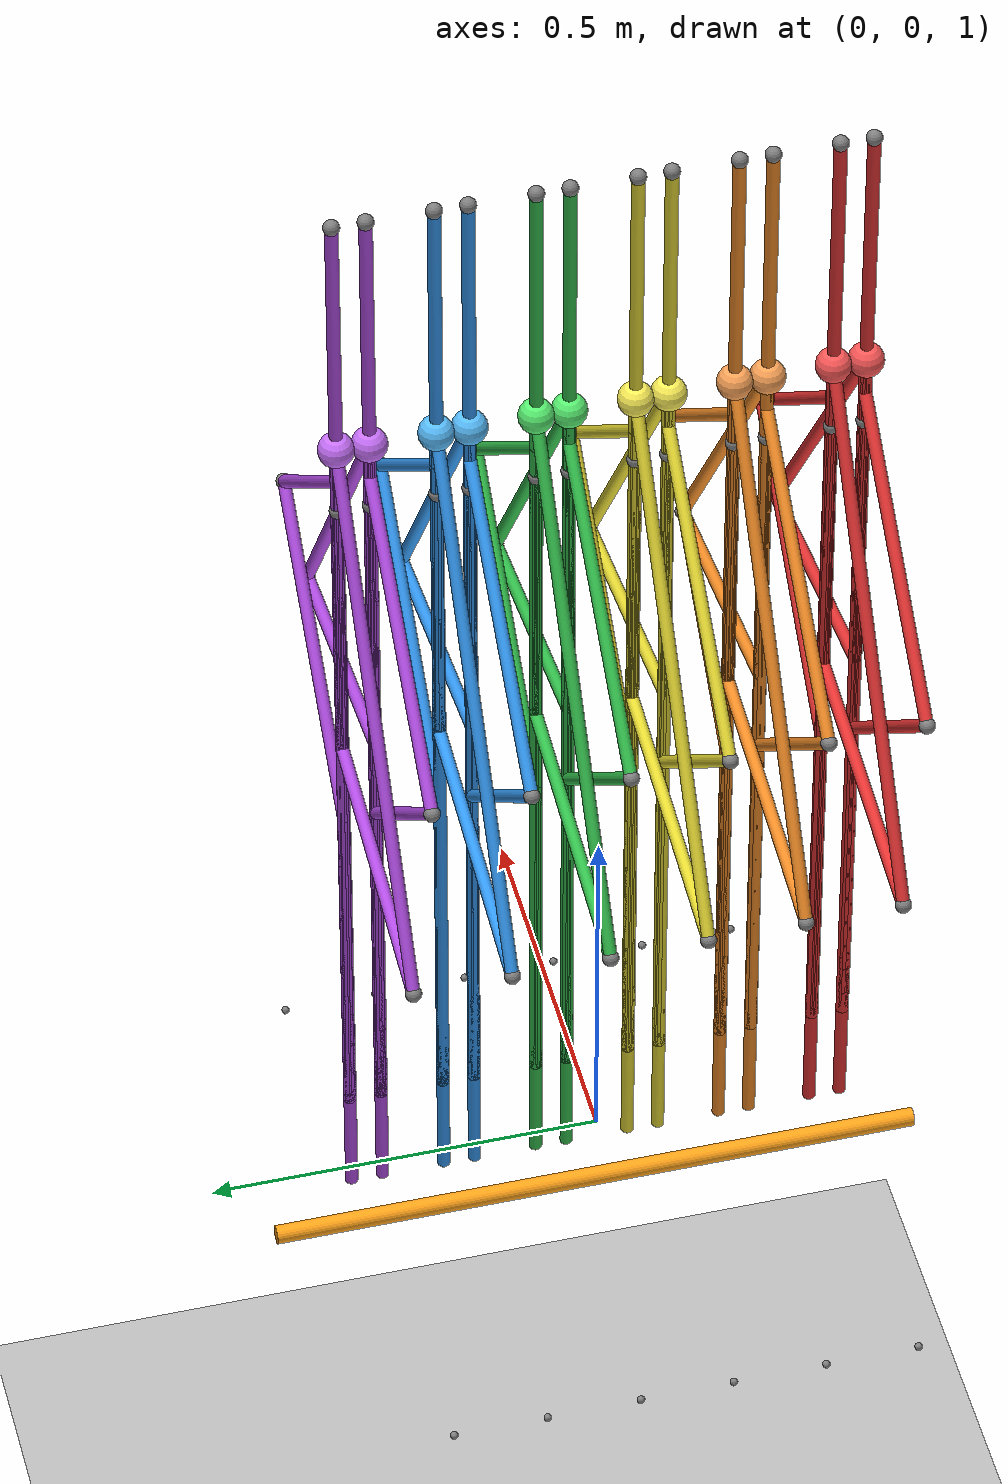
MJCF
<mujoco model="Strandbeest_12Legs">

  <compiler angle="radian" inertiafromgeom="true" autolimits="true" />

  <option gravity="0 0 -9.81" timestep="0.0005" integrator="implicitfast" iterations="800" solver="Newton" tolerance="1e-12" noslip_iterations="10" noslip_tolerance="1e-10" />

  <visual>
    <rgba haze="0.15 0.25 0.35 1" />
  </visual>

  <default>
    <joint damping="0.5" armature="0.005" />
    <geom contype="0" conaffinity="0" friction="0.8 0.1 0.1" rgba="0.5 0.5 0.5 1" density="500" />
  </default>

  <asset>
    <material name="frame" rgba="0.184 0.282 0.345 1" />
    <material name="crank" rgba="1.0 0.639 0.098 1" />
    <material name="foot_mat" rgba="0.9 0.2 0.1 1" />
    <material name="pair01" rgba="0.90 0.20 0.20 1" />
    <material name="pair02" rgba="0.95 0.55 0.15 1" />
    <material name="pair03" rgba="0.90 0.85 0.20 1" />
    <material name="pair04" rgba="0.20 0.75 0.30 1" />
    <material name="pair05" rgba="0.20 0.60 0.95 1" />
    <material name="pair06" rgba="0.70 0.30 0.90 1" />
    <material name="foot_pair01" rgba="1.00 0.35 0.35 1" />
    <material name="foot_pair02" rgba="1.00 0.65 0.35 1" />
    <material name="foot_pair03" rgba="1.00 0.95 0.35 1" />
    <material name="foot_pair04" rgba="0.35 0.95 0.45 1" />
    <material name="foot_pair05" rgba="0.35 0.75 1.00 1" />
    <material name="foot_pair06" rgba="0.80 0.45 1.00 1" />
  </asset>

  <worldbody>
    <body name="crossbar" pos="0 0 0.9">
      <geom name="crossbar_geom" type="cylinder" size="0.012 0.42" pos="0 0 0" euler="1.5708 0 0" material="crank" />

      <site name="base_p01_l_site" pos="-0.38 -0.32000 0" size="0.005" />

      <body name="crank_axle_p01_l" pos="0 -0.32000 0.078">
        <joint name="joint_crossbar_crank_p01_l" type="hinge" axis="0 1 0" />

        <body name="bar_m_p01_l" pos="0 0 0" euler="0 0 0">
          <geom name="bar_m_geom_p01_l" type="cylinder" size="0.008 0.075" pos="0 0 0.075" material="pair01" />

          <body name="bar_j_p01_l" pos="0 0 0.15">
            <joint name="joint_m_j_p01_l" type="hinge" axis="0 1 0" />
            <geom name="bar_j_geom_p01_l" type="cylinder" size="0.008 0.25" pos="0 0 0.25" material="pair01" />

            <body name="bar_k_p01_l" pos="0 0 0">
              <joint name="joint_j_k_p01_l" type="hinge" axis="0 1 0" />
              <geom name="bar_k_geom_p01_l" type="cylinder" size="0.008 0.3095" pos="0 0 0.3095" material="pair01" />

              <body name="bar_c_p01_l" pos="0 0 0.619">
                <joint name="joint_k_c_p01_l" type="hinge" axis="0 1 0" />
                <geom name="bar_c_geom_p01_l" type="cylinder" size="0.008 0.1965" pos="0 0 0.1965" material="pair01" />
                <site name="bar_c_tip_p01_l" pos="0 0 0.393" size="0.01" />
              </body>

              <body name="bars_g_h_i_p01_l" pos="0 0 0.619">
                <joint name="joint_k_i_p01_l" type="hinge" axis="0 1 0" />
                <geom name="ghi_g_p01_l" type="cylinder" size="0.008 0.245" pos="0 0 0.245" material="pair01" />
                <geom name="ghi_h_p01_l" type="cylinder" size="0.008 0.1835" pos="0.1812 0 -0.0291" euler="0 1.73 0" material="pair01" />
                <geom name="ghi_i_p01_l" type="cylinder" size="0.008 0.3285" pos="0.1811 0 0.2159" euler="0 2.5576 0" material="pair01" />
                <geom name="foot_p01_l" type="sphere" size="0.022" pos="0 0 0.49" contype="1" conaffinity="1" material="foot_pair01" />
                <site name="ghi_loopsite_p01_l" pos="0.3624 0 -0.0582" size="0.01" />
              </body>
            </body>

            <body name="bars_b_d_e_p01_l" pos="0 0 0.50">
              <joint name="joint_j_e_p01_l" type="hinge" axis="0 1 0" />
              <geom name="bde_b_p01_l" type="cylinder" size="0.008 0.279" pos="0 0 0.279" material="pair01" />
              <geom name="bde_d_p01_l" type="cylinder" size="0.008 0.2005" pos="-0.1488 0 0.4236" euler="0 -2.3056 0" material="pair01" />
              <geom name="bde_e_p01_l" type="cylinder" size="0.008 0.2075" pos="-0.1489 0 0.1446" euler="0 -0.8 0" material="pair01" />
              <site name="bde_loopsite_p01_l" pos="-0.2978 0 0.2892" size="0.01" />

              <body name="bar_f_p01_l" pos="0 0 0.558">
                <joint name="joint_e_f_p01_l" type="hinge" axis="0 1 0" />
                <geom name="bar_f_geom_p01_l" type="cylinder" size="0.008 0.197" pos="0 0 0.197" material="pair01" />
                <site name="bar_f_tip_p01_l" pos="0 0 0.394" size="0.01" />
              </body>
            </body>

          </body>
        </body>
      </body>

      <site name="base_p01_r_site" pos="0.38 -0.28 0" size="0.005" />

      <body name="crank_axle_p01_r" pos="0 -0.28 0.078">
        <joint name="joint_crossbar_crank_p01_r" type="hinge" axis="0 1 0" />

        <body name="bar_m_p01_r" pos="0 0 0" euler="0 0 0">
          <geom name="bar_m_geom_p01_r" type="cylinder" size="0.008 0.075" pos="0 0 0.075" material="pair01" />

          <body name="bar_j_p01_r" pos="0 0 0.15">
            <joint name="joint_m_j_p01_r" type="hinge" axis="0 1 0" />
            <geom name="bar_j_geom_p01_r" type="cylinder" size="0.008 0.25" pos="0 0 0.25" material="pair01" />

            <body name="bar_k_p01_r" pos="0 0 0">
              <joint name="joint_j_k_p01_r" type="hinge" axis="0 1 0" />
              <geom name="bar_k_geom_p01_r" type="cylinder" size="0.008 0.3095" pos="0 0 0.3095" material="pair01" />

              <body name="bar_c_p01_r" pos="0 0 0.619">
                <joint name="joint_k_c_p01_r" type="hinge" axis="0 1 0" />
                <geom name="bar_c_geom_p01_r" type="cylinder" size="0.008 0.1965" pos="0 0 0.1965" material="pair01" />
                <site name="bar_c_tip_p01_r" pos="0 0 0.393" size="0.01" />
              </body>

              <body name="bars_g_h_i_p01_r" pos="0 0 0.619">
                <joint name="joint_k_i_p01_r" type="hinge" axis="0 1 0" />
                <geom name="ghi_g_p01_r" type="cylinder" size="0.008 0.245" pos="0 0 0.245" material="pair01" />
                <geom name="ghi_h_p01_r" type="cylinder" size="0.008 0.1835" pos="-0.1812 0 -0.0291" euler="0 -1.73 0" material="pair01" />
                <geom name="ghi_i_p01_r" type="cylinder" size="0.008 0.3285" pos="-0.1811 0 0.2159" euler="0 -2.5576 0" material="pair01" />
                <geom name="foot_p01_r" type="sphere" size="0.022" pos="0 0 0.49" contype="1" conaffinity="1" material="foot_pair01" />
                <site name="ghi_loopsite_p01_r" pos="-0.3624 0 -0.0582" size="0.01" />
              </body>
            </body>

            <body name="bars_b_d_e_p01_r" pos="0 0 0.5">
              <joint name="joint_j_e_p01_r" type="hinge" axis="0 1 0" />
              <geom name="bde_b_p01_r" type="cylinder" size="0.008 0.279" pos="0 0 0.279" material="pair01" />
              <geom name="bde_d_p01_r" type="cylinder" size="0.008 0.2005" pos="0.1488 0 0.4236" euler="0 2.3056 0" material="pair01" />
              <geom name="bde_e_p01_r" type="cylinder" size="0.008 0.2075" pos="0.1489 0 0.1446" euler="0 0.8 0" material="pair01" />
              <site name="bde_loopsite_p01_r" pos="0.2978 0 0.2892" size="0.01" />

              <body name="bar_f_p01_r" pos="0 0 0.558">
                <joint name="joint_e_f_p01_r" type="hinge" axis="0 1 0" />
                <geom name="bar_f_geom_p01_r" type="cylinder" size="0.008 0.197" pos="0 0 0.197" material="pair01" />
                <site name="bar_f_tip_p01_r" pos="0 0 0.394" size="0.01" />
              </body>
            </body>

          </body>
        </body>
      </body>

      <site name="base_p02_l_site" pos="-0.38 -0.20000 0" size="0.005" />

      <body name="crank_axle_p02_l" pos="0 -0.20000 0.078">
        <joint name="joint_crossbar_crank_p02_l" type="hinge" axis="0 1 0" />

        <body name="bar_m_p02_l" pos="0 0 0" euler="0 0 0">
          <geom name="bar_m_geom_p02_l" type="cylinder" size="0.008 0.075" pos="0 0 0.075" material="pair02" />

          <body name="bar_j_p02_l" pos="0 0 0.15">
            <joint name="joint_m_j_p02_l" type="hinge" axis="0 1 0" />
            <geom name="bar_j_geom_p02_l" type="cylinder" size="0.008 0.25" pos="0 0 0.25" material="pair02" />

            <body name="bar_k_p02_l" pos="0 0 0">
              <joint name="joint_j_k_p02_l" type="hinge" axis="0 1 0" />
              <geom name="bar_k_geom_p02_l" type="cylinder" size="0.008 0.3095" pos="0 0 0.3095" material="pair02" />

              <body name="bar_c_p02_l" pos="0 0 0.619">
                <joint name="joint_k_c_p02_l" type="hinge" axis="0 1 0" />
                <geom name="bar_c_geom_p02_l" type="cylinder" size="0.008 0.1965" pos="0 0 0.1965" material="pair02" />
                <site name="bar_c_tip_p02_l" pos="0 0 0.393" size="0.01" />
              </body>

              <body name="bars_g_h_i_p02_l" pos="0 0 0.619">
                <joint name="joint_k_i_p02_l" type="hinge" axis="0 1 0" />
                <geom name="ghi_g_p02_l" type="cylinder" size="0.008 0.245" pos="0 0 0.245" material="pair02" />
                <geom name="ghi_h_p02_l" type="cylinder" size="0.008 0.1835" pos="0.1812 0 -0.0291" euler="0 1.73 0" material="pair02" />
                <geom name="ghi_i_p02_l" type="cylinder" size="0.008 0.3285" pos="0.1811 0 0.2159" euler="0 2.5576 0" material="pair02" />
                <geom name="foot_p02_l" type="sphere" size="0.022" pos="0 0 0.49" contype="1" conaffinity="1" material="foot_pair02" />
                <site name="ghi_loopsite_p02_l" pos="0.3624 0 -0.0582" size="0.01" />
              </body>
            </body>

            <body name="bars_b_d_e_p02_l" pos="0 0 0.50">
              <joint name="joint_j_e_p02_l" type="hinge" axis="0 1 0" />
              <geom name="bde_b_p02_l" type="cylinder" size="0.008 0.279" pos="0 0 0.279" material="pair02" />
              <geom name="bde_d_p02_l" type="cylinder" size="0.008 0.2005" pos="-0.1488 0 0.4236" euler="0 -2.3056 0" material="pair02" />
              <geom name="bde_e_p02_l" type="cylinder" size="0.008 0.2075" pos="-0.1489 0 0.1446" euler="0 -0.8 0" material="pair02" />
              <site name="bde_loopsite_p02_l" pos="-0.2978 0 0.2892" size="0.01" />

              <body name="bar_f_p02_l" pos="0 0 0.558">
                <joint name="joint_e_f_p02_l" type="hinge" axis="0 1 0" />
                <geom name="bar_f_geom_p02_l" type="cylinder" size="0.008 0.197" pos="0 0 0.197" material="pair02" />
                <site name="bar_f_tip_p02_l" pos="0 0 0.394" size="0.01" />
              </body>
            </body>

          </body>
        </body>
      </body>

      <site name="base_p02_r_site" pos="0.38 -0.16 0" size="0.005" />

      <body name="crank_axle_p02_r" pos="0 -0.16 0.078">
        <joint name="joint_crossbar_crank_p02_r" type="hinge" axis="0 1 0" />

        <body name="bar_m_p02_r" pos="0 0 0" euler="0 0 0">
          <geom name="bar_m_geom_p02_r" type="cylinder" size="0.008 0.075" pos="0 0 0.075" material="pair02" />

          <body name="bar_j_p02_r" pos="0 0 0.15">
            <joint name="joint_m_j_p02_r" type="hinge" axis="0 1 0" />
            <geom name="bar_j_geom_p02_r" type="cylinder" size="0.008 0.25" pos="0 0 0.25" material="pair02" />

            <body name="bar_k_p02_r" pos="0 0 0">
              <joint name="joint_j_k_p02_r" type="hinge" axis="0 1 0" />
              <geom name="bar_k_geom_p02_r" type="cylinder" size="0.008 0.3095" pos="0 0 0.3095" material="pair02" />

              <body name="bar_c_p02_r" pos="0 0 0.619">
                <joint name="joint_k_c_p02_r" type="hinge" axis="0 1 0" />
                <geom name="bar_c_geom_p02_r" type="cylinder" size="0.008 0.1965" pos="0 0 0.1965" material="pair02" />
                <site name="bar_c_tip_p02_r" pos="0 0 0.393" size="0.01" />
              </body>

              <body name="bars_g_h_i_p02_r" pos="0 0 0.619">
                <joint name="joint_k_i_p02_r" type="hinge" axis="0 1 0" />
                <geom name="ghi_g_p02_r" type="cylinder" size="0.008 0.245" pos="0 0 0.245" material="pair02" />
                <geom name="ghi_h_p02_r" type="cylinder" size="0.008 0.1835" pos="-0.1812 0 -0.0291" euler="0 -1.73 0" material="pair02" />
                <geom name="ghi_i_p02_r" type="cylinder" size="0.008 0.3285" pos="-0.1811 0 0.2159" euler="0 -2.5576 0" material="pair02" />
                <geom name="foot_p02_r" type="sphere" size="0.022" pos="0 0 0.49" contype="1" conaffinity="1" material="foot_pair02" />
                <site name="ghi_loopsite_p02_r" pos="-0.3624 0 -0.0582" size="0.01" />
              </body>
            </body>

            <body name="bars_b_d_e_p02_r" pos="0 0 0.5">
              <joint name="joint_j_e_p02_r" type="hinge" axis="0 1 0" />
              <geom name="bde_b_p02_r" type="cylinder" size="0.008 0.279" pos="0 0 0.279" material="pair02" />
              <geom name="bde_d_p02_r" type="cylinder" size="0.008 0.2005" pos="0.1488 0 0.4236" euler="0 2.3056 0" material="pair02" />
              <geom name="bde_e_p02_r" type="cylinder" size="0.008 0.2075" pos="0.1489 0 0.1446" euler="0 0.8 0" material="pair02" />
              <site name="bde_loopsite_p02_r" pos="0.2978 0 0.2892" size="0.01" />

              <body name="bar_f_p02_r" pos="0 0 0.558">
                <joint name="joint_e_f_p02_r" type="hinge" axis="0 1 0" />
                <geom name="bar_f_geom_p02_r" type="cylinder" size="0.008 0.197" pos="0 0 0.197" material="pair02" />
                <site name="bar_f_tip_p02_r" pos="0 0 0.394" size="0.01" />
              </body>
            </body>

          </body>
        </body>
      </body>

      <site name="base_p03_l_site" pos="-0.38 -0.08000 0" size="0.005" />

      <body name="crank_axle_p03_l" pos="0 -0.08000 0.078">
        <joint name="joint_crossbar_crank_p03_l" type="hinge" axis="0 1 0" />

        <body name="bar_m_p03_l" pos="0 0 0" euler="0 0 0">
          <geom name="bar_m_geom_p03_l" type="cylinder" size="0.008 0.075" pos="0 0 0.075" material="pair03" />

          <body name="bar_j_p03_l" pos="0 0 0.15">
            <joint name="joint_m_j_p03_l" type="hinge" axis="0 1 0" />
            <geom name="bar_j_geom_p03_l" type="cylinder" size="0.008 0.25" pos="0 0 0.25" material="pair03" />

            <body name="bar_k_p03_l" pos="0 0 0">
              <joint name="joint_j_k_p03_l" type="hinge" axis="0 1 0" />
              <geom name="bar_k_geom_p03_l" type="cylinder" size="0.008 0.3095" pos="0 0 0.3095" material="pair03" />

              <body name="bar_c_p03_l" pos="0 0 0.619">
                <joint name="joint_k_c_p03_l" type="hinge" axis="0 1 0" />
                <geom name="bar_c_geom_p03_l" type="cylinder" size="0.008 0.1965" pos="0 0 0.1965" material="pair03" />
                <site name="bar_c_tip_p03_l" pos="0 0 0.393" size="0.01" />
              </body>

              <body name="bars_g_h_i_p03_l" pos="0 0 0.619">
                <joint name="joint_k_i_p03_l" type="hinge" axis="0 1 0" />
                <geom name="ghi_g_p03_l" type="cylinder" size="0.008 0.245" pos="0 0 0.245" material="pair03" />
                <geom name="ghi_h_p03_l" type="cylinder" size="0.008 0.1835" pos="0.1812 0 -0.0291" euler="0 1.73 0" material="pair03" />
                <geom name="ghi_i_p03_l" type="cylinder" size="0.008 0.3285" pos="0.1811 0 0.2159" euler="0 2.5576 0" material="pair03" />
                <geom name="foot_p03_l" type="sphere" size="0.022" pos="0 0 0.49" contype="1" conaffinity="1" material="foot_pair03" />
                <site name="ghi_loopsite_p03_l" pos="0.3624 0 -0.0582" size="0.01" />
              </body>
            </body>

            <body name="bars_b_d_e_p03_l" pos="0 0 0.50">
              <joint name="joint_j_e_p03_l" type="hinge" axis="0 1 0" />
              <geom name="bde_b_p03_l" type="cylinder" size="0.008 0.279" pos="0 0 0.279" material="pair03" />
              <geom name="bde_d_p03_l" type="cylinder" size="0.008 0.2005" pos="-0.1488 0 0.4236" euler="0 -2.3056 0" material="pair03" />
              <geom name="bde_e_p03_l" type="cylinder" size="0.008 0.2075" pos="-0.1489 0 0.1446" euler="0 -0.8 0" material="pair03" />
              <site name="bde_loopsite_p03_l" pos="-0.2978 0 0.2892" size="0.01" />

              <body name="bar_f_p03_l" pos="0 0 0.558">
                <joint name="joint_e_f_p03_l" type="hinge" axis="0 1 0" />
                <geom name="bar_f_geom_p03_l" type="cylinder" size="0.008 0.197" pos="0 0 0.197" material="pair03" />
                <site name="bar_f_tip_p03_l" pos="0 0 0.394" size="0.01" />
              </body>
            </body>

          </body>
        </body>
      </body>

      <site name="base_p03_r_site" pos="0.38 -0.04 0" size="0.005" />

      <body name="crank_axle_p03_r" pos="0 -0.04 0.078">
        <joint name="joint_crossbar_crank_p03_r" type="hinge" axis="0 1 0" />

        <body name="bar_m_p03_r" pos="0 0 0" euler="0 0 0">
          <geom name="bar_m_geom_p03_r" type="cylinder" size="0.008 0.075" pos="0 0 0.075" material="pair03" />

          <body name="bar_j_p03_r" pos="0 0 0.15">
            <joint name="joint_m_j_p03_r" type="hinge" axis="0 1 0" />
            <geom name="bar_j_geom_p03_r" type="cylinder" size="0.008 0.25" pos="0 0 0.25" material="pair03" />

            <body name="bar_k_p03_r" pos="0 0 0">
              <joint name="joint_j_k_p03_r" type="hinge" axis="0 1 0" />
              <geom name="bar_k_geom_p03_r" type="cylinder" size="0.008 0.3095" pos="0 0 0.3095" material="pair03" />

              <body name="bar_c_p03_r" pos="0 0 0.619">
                <joint name="joint_k_c_p03_r" type="hinge" axis="0 1 0" />
                <geom name="bar_c_geom_p03_r" type="cylinder" size="0.008 0.1965" pos="0 0 0.1965" material="pair03" />
                <site name="bar_c_tip_p03_r" pos="0 0 0.393" size="0.01" />
              </body>

              <body name="bars_g_h_i_p03_r" pos="0 0 0.619">
                <joint name="joint_k_i_p03_r" type="hinge" axis="0 1 0" />
                <geom name="ghi_g_p03_r" type="cylinder" size="0.008 0.245" pos="0 0 0.245" material="pair03" />
                <geom name="ghi_h_p03_r" type="cylinder" size="0.008 0.1835" pos="-0.1812 0 -0.0291" euler="0 -1.73 0" material="pair03" />
                <geom name="ghi_i_p03_r" type="cylinder" size="0.008 0.3285" pos="-0.1811 0 0.2159" euler="0 -2.5576 0" material="pair03" />
                <geom name="foot_p03_r" type="sphere" size="0.022" pos="0 0 0.49" contype="1" conaffinity="1" material="foot_pair03" />
                <site name="ghi_loopsite_p03_r" pos="-0.3624 0 -0.0582" size="0.01" />
              </body>
            </body>

            <body name="bars_b_d_e_p03_r" pos="0 0 0.5">
              <joint name="joint_j_e_p03_r" type="hinge" axis="0 1 0" />
              <geom name="bde_b_p03_r" type="cylinder" size="0.008 0.279" pos="0 0 0.279" material="pair03" />
              <geom name="bde_d_p03_r" type="cylinder" size="0.008 0.2005" pos="0.1488 0 0.4236" euler="0 2.3056 0" material="pair03" />
              <geom name="bde_e_p03_r" type="cylinder" size="0.008 0.2075" pos="0.1489 0 0.1446" euler="0 0.8 0" material="pair03" />
              <site name="bde_loopsite_p03_r" pos="0.2978 0 0.2892" size="0.01" />

              <body name="bar_f_p03_r" pos="0 0 0.558">
                <joint name="joint_e_f_p03_r" type="hinge" axis="0 1 0" />
                <geom name="bar_f_geom_p03_r" type="cylinder" size="0.008 0.197" pos="0 0 0.197" material="pair03" />
                <site name="bar_f_tip_p03_r" pos="0 0 0.394" size="0.01" />
              </body>
            </body>

          </body>
        </body>
      </body>

      <site name="base_p04_l_site" pos="-0.38 0.04000 0" size="0.005" />

      <body name="crank_axle_p04_l" pos="0 0.04000 0.078">
        <joint name="joint_crossbar_crank_p04_l" type="hinge" axis="0 1 0" />

        <body name="bar_m_p04_l" pos="0 0 0" euler="0 0 0">
          <geom name="bar_m_geom_p04_l" type="cylinder" size="0.008 0.075" pos="0 0 0.075" material="pair04" />

          <body name="bar_j_p04_l" pos="0 0 0.15">
            <joint name="joint_m_j_p04_l" type="hinge" axis="0 1 0" />
            <geom name="bar_j_geom_p04_l" type="cylinder" size="0.008 0.25" pos="0 0 0.25" material="pair04" />

            <body name="bar_k_p04_l" pos="0 0 0">
              <joint name="joint_j_k_p04_l" type="hinge" axis="0 1 0" />
              <geom name="bar_k_geom_p04_l" type="cylinder" size="0.008 0.3095" pos="0 0 0.3095" material="pair04" />

              <body name="bar_c_p04_l" pos="0 0 0.619">
                <joint name="joint_k_c_p04_l" type="hinge" axis="0 1 0" />
                <geom name="bar_c_geom_p04_l" type="cylinder" size="0.008 0.1965" pos="0 0 0.1965" material="pair04" />
                <site name="bar_c_tip_p04_l" pos="0 0 0.393" size="0.01" />
              </body>

              <body name="bars_g_h_i_p04_l" pos="0 0 0.619">
                <joint name="joint_k_i_p04_l" type="hinge" axis="0 1 0" />
                <geom name="ghi_g_p04_l" type="cylinder" size="0.008 0.245" pos="0 0 0.245" material="pair04" />
                <geom name="ghi_h_p04_l" type="cylinder" size="0.008 0.1835" pos="0.1812 0 -0.0291" euler="0 1.73 0" material="pair04" />
                <geom name="ghi_i_p04_l" type="cylinder" size="0.008 0.3285" pos="0.1811 0 0.2159" euler="0 2.5576 0" material="pair04" />
                <geom name="foot_p04_l" type="sphere" size="0.022" pos="0 0 0.49" contype="1" conaffinity="1" material="foot_pair04" />
                <site name="ghi_loopsite_p04_l" pos="0.3624 0 -0.0582" size="0.01" />
              </body>
            </body>

            <body name="bars_b_d_e_p04_l" pos="0 0 0.50">
              <joint name="joint_j_e_p04_l" type="hinge" axis="0 1 0" />
              <geom name="bde_b_p04_l" type="cylinder" size="0.008 0.279" pos="0 0 0.279" material="pair04" />
              <geom name="bde_d_p04_l" type="cylinder" size="0.008 0.2005" pos="-0.1488 0 0.4236" euler="0 -2.3056 0" material="pair04" />
              <geom name="bde_e_p04_l" type="cylinder" size="0.008 0.2075" pos="-0.1489 0 0.1446" euler="0 -0.8 0" material="pair04" />
              <site name="bde_loopsite_p04_l" pos="-0.2978 0 0.2892" size="0.01" />

              <body name="bar_f_p04_l" pos="0 0 0.558">
                <joint name="joint_e_f_p04_l" type="hinge" axis="0 1 0" />
                <geom name="bar_f_geom_p04_l" type="cylinder" size="0.008 0.197" pos="0 0 0.197" material="pair04" />
                <site name="bar_f_tip_p04_l" pos="0 0 0.394" size="0.01" />
              </body>
            </body>

          </body>
        </body>
      </body>

      <site name="base_p04_r_site" pos="0.38 0.08 0" size="0.005" />

      <body name="crank_axle_p04_r" pos="0 0.08 0.078">
        <joint name="joint_crossbar_crank_p04_r" type="hinge" axis="0 1 0" />

        <body name="bar_m_p04_r" pos="0 0 0" euler="0 0 0">
          <geom name="bar_m_geom_p04_r" type="cylinder" size="0.008 0.075" pos="0 0 0.075" material="pair04" />

          <body name="bar_j_p04_r" pos="0 0 0.15">
            <joint name="joint_m_j_p04_r" type="hinge" axis="0 1 0" />
            <geom name="bar_j_geom_p04_r" type="cylinder" size="0.008 0.25" pos="0 0 0.25" material="pair04" />

            <body name="bar_k_p04_r" pos="0 0 0">
              <joint name="joint_j_k_p04_r" type="hinge" axis="0 1 0" />
              <geom name="bar_k_geom_p04_r" type="cylinder" size="0.008 0.3095" pos="0 0 0.3095" material="pair04" />

              <body name="bar_c_p04_r" pos="0 0 0.619">
                <joint name="joint_k_c_p04_r" type="hinge" axis="0 1 0" />
                <geom name="bar_c_geom_p04_r" type="cylinder" size="0.008 0.1965" pos="0 0 0.1965" material="pair04" />
                <site name="bar_c_tip_p04_r" pos="0 0 0.393" size="0.01" />
              </body>

              <body name="bars_g_h_i_p04_r" pos="0 0 0.619">
                <joint name="joint_k_i_p04_r" type="hinge" axis="0 1 0" />
                <geom name="ghi_g_p04_r" type="cylinder" size="0.008 0.245" pos="0 0 0.245" material="pair04" />
                <geom name="ghi_h_p04_r" type="cylinder" size="0.008 0.1835" pos="-0.1812 0 -0.0291" euler="0 -1.73 0" material="pair04" />
                <geom name="ghi_i_p04_r" type="cylinder" size="0.008 0.3285" pos="-0.1811 0 0.2159" euler="0 -2.5576 0" material="pair04" />
                <geom name="foot_p04_r" type="sphere" size="0.022" pos="0 0 0.49" contype="1" conaffinity="1" material="foot_pair04" />
                <site name="ghi_loopsite_p04_r" pos="-0.3624 0 -0.0582" size="0.01" />
              </body>
            </body>

            <body name="bars_b_d_e_p04_r" pos="0 0 0.5">
              <joint name="joint_j_e_p04_r" type="hinge" axis="0 1 0" />
              <geom name="bde_b_p04_r" type="cylinder" size="0.008 0.279" pos="0 0 0.279" material="pair04" />
              <geom name="bde_d_p04_r" type="cylinder" size="0.008 0.2005" pos="0.1488 0 0.4236" euler="0 2.3056 0" material="pair04" />
              <geom name="bde_e_p04_r" type="cylinder" size="0.008 0.2075" pos="0.1489 0 0.1446" euler="0 0.8 0" material="pair04" />
              <site name="bde_loopsite_p04_r" pos="0.2978 0 0.2892" size="0.01" />

              <body name="bar_f_p04_r" pos="0 0 0.558">
                <joint name="joint_e_f_p04_r" type="hinge" axis="0 1 0" />
                <geom name="bar_f_geom_p04_r" type="cylinder" size="0.008 0.197" pos="0 0 0.197" material="pair04" />
                <site name="bar_f_tip_p04_r" pos="0 0 0.394" size="0.01" />
              </body>
            </body>

          </body>
        </body>
      </body>

      <site name="base_p05_l_site" pos="-0.38 0.16000 0" size="0.005" />

      <body name="crank_axle_p05_l" pos="0 0.16000 0.078">
        <joint name="joint_crossbar_crank_p05_l" type="hinge" axis="0 1 0" />

        <body name="bar_m_p05_l" pos="0 0 0" euler="0 0 0">
          <geom name="bar_m_geom_p05_l" type="cylinder" size="0.008 0.075" pos="0 0 0.075" material="pair05" />

          <body name="bar_j_p05_l" pos="0 0 0.15">
            <joint name="joint_m_j_p05_l" type="hinge" axis="0 1 0" />
            <geom name="bar_j_geom_p05_l" type="cylinder" size="0.008 0.25" pos="0 0 0.25" material="pair05" />

            <body name="bar_k_p05_l" pos="0 0 0">
              <joint name="joint_j_k_p05_l" type="hinge" axis="0 1 0" />
              <geom name="bar_k_geom_p05_l" type="cylinder" size="0.008 0.3095" pos="0 0 0.3095" material="pair05" />

              <body name="bar_c_p05_l" pos="0 0 0.619">
                <joint name="joint_k_c_p05_l" type="hinge" axis="0 1 0" />
                <geom name="bar_c_geom_p05_l" type="cylinder" size="0.008 0.1965" pos="0 0 0.1965" material="pair05" />
                <site name="bar_c_tip_p05_l" pos="0 0 0.393" size="0.01" />
              </body>

              <body name="bars_g_h_i_p05_l" pos="0 0 0.619">
                <joint name="joint_k_i_p05_l" type="hinge" axis="0 1 0" />
                <geom name="ghi_g_p05_l" type="cylinder" size="0.008 0.245" pos="0 0 0.245" material="pair05" />
                <geom name="ghi_h_p05_l" type="cylinder" size="0.008 0.1835" pos="0.1812 0 -0.0291" euler="0 1.73 0" material="pair05" />
                <geom name="ghi_i_p05_l" type="cylinder" size="0.008 0.3285" pos="0.1811 0 0.2159" euler="0 2.5576 0" material="pair05" />
                <geom name="foot_p05_l" type="sphere" size="0.022" pos="0 0 0.49" contype="1" conaffinity="1" material="foot_pair05" />
                <site name="ghi_loopsite_p05_l" pos="0.3624 0 -0.0582" size="0.01" />
              </body>
            </body>

            <body name="bars_b_d_e_p05_l" pos="0 0 0.50">
              <joint name="joint_j_e_p05_l" type="hinge" axis="0 1 0" />
              <geom name="bde_b_p05_l" type="cylinder" size="0.008 0.279" pos="0 0 0.279" material="pair05" />
              <geom name="bde_d_p05_l" type="cylinder" size="0.008 0.2005" pos="-0.1488 0 0.4236" euler="0 -2.3056 0" material="pair05" />
              <geom name="bde_e_p05_l" type="cylinder" size="0.008 0.2075" pos="-0.1489 0 0.1446" euler="0 -0.8 0" material="pair05" />
              <site name="bde_loopsite_p05_l" pos="-0.2978 0 0.2892" size="0.01" />

              <body name="bar_f_p05_l" pos="0 0 0.558">
                <joint name="joint_e_f_p05_l" type="hinge" axis="0 1 0" />
                <geom name="bar_f_geom_p05_l" type="cylinder" size="0.008 0.197" pos="0 0 0.197" material="pair05" />
                <site name="bar_f_tip_p05_l" pos="0 0 0.394" size="0.01" />
              </body>
            </body>

          </body>
        </body>
      </body>

      <site name="base_p05_r_site" pos="0.38 0.2 0" size="0.005" />

      <body name="crank_axle_p05_r" pos="0 0.2 0.078">
        <joint name="joint_crossbar_crank_p05_r" type="hinge" axis="0 1 0" />

        <body name="bar_m_p05_r" pos="0 0 0" euler="0 0 0">
          <geom name="bar_m_geom_p05_r" type="cylinder" size="0.008 0.075" pos="0 0 0.075" material="pair05" />

          <body name="bar_j_p05_r" pos="0 0 0.15">
            <joint name="joint_m_j_p05_r" type="hinge" axis="0 1 0" />
            <geom name="bar_j_geom_p05_r" type="cylinder" size="0.008 0.25" pos="0 0 0.25" material="pair05" />

            <body name="bar_k_p05_r" pos="0 0 0">
              <joint name="joint_j_k_p05_r" type="hinge" axis="0 1 0" />
              <geom name="bar_k_geom_p05_r" type="cylinder" size="0.008 0.3095" pos="0 0 0.3095" material="pair05" />

              <body name="bar_c_p05_r" pos="0 0 0.619">
                <joint name="joint_k_c_p05_r" type="hinge" axis="0 1 0" />
                <geom name="bar_c_geom_p05_r" type="cylinder" size="0.008 0.1965" pos="0 0 0.1965" material="pair05" />
                <site name="bar_c_tip_p05_r" pos="0 0 0.393" size="0.01" />
              </body>

              <body name="bars_g_h_i_p05_r" pos="0 0 0.619">
                <joint name="joint_k_i_p05_r" type="hinge" axis="0 1 0" />
                <geom name="ghi_g_p05_r" type="cylinder" size="0.008 0.245" pos="0 0 0.245" material="pair05" />
                <geom name="ghi_h_p05_r" type="cylinder" size="0.008 0.1835" pos="-0.1812 0 -0.0291" euler="0 -1.73 0" material="pair05" />
                <geom name="ghi_i_p05_r" type="cylinder" size="0.008 0.3285" pos="-0.1811 0 0.2159" euler="0 -2.5576 0" material="pair05" />
                <geom name="foot_p05_r" type="sphere" size="0.022" pos="0 0 0.49" contype="1" conaffinity="1" material="foot_pair05" />
                <site name="ghi_loopsite_p05_r" pos="-0.3624 0 -0.0582" size="0.01" />
              </body>
            </body>

            <body name="bars_b_d_e_p05_r" pos="0 0 0.5">
              <joint name="joint_j_e_p05_r" type="hinge" axis="0 1 0" />
              <geom name="bde_b_p05_r" type="cylinder" size="0.008 0.279" pos="0 0 0.279" material="pair05" />
              <geom name="bde_d_p05_r" type="cylinder" size="0.008 0.2005" pos="0.1488 0 0.4236" euler="0 2.3056 0" material="pair05" />
              <geom name="bde_e_p05_r" type="cylinder" size="0.008 0.2075" pos="0.1489 0 0.1446" euler="0 0.8 0" material="pair05" />
              <site name="bde_loopsite_p05_r" pos="0.2978 0 0.2892" size="0.01" />

              <body name="bar_f_p05_r" pos="0 0 0.558">
                <joint name="joint_e_f_p05_r" type="hinge" axis="0 1 0" />
                <geom name="bar_f_geom_p05_r" type="cylinder" size="0.008 0.197" pos="0 0 0.197" material="pair05" />
                <site name="bar_f_tip_p05_r" pos="0 0 0.394" size="0.01" />
              </body>
            </body>

          </body>
        </body>
      </body>

      <site name="base_p06_l_site" pos="-0.38 0.28000 0" size="0.005" />

      <body name="crank_axle_p06_l" pos="0 0.28000 0.078">
        <joint name="joint_crossbar_crank_p06_l" type="hinge" axis="0 1 0" />

        <body name="bar_m_p06_l" pos="0 0 0" euler="0 0 0">
          <geom name="bar_m_geom_p06_l" type="cylinder" size="0.008 0.075" pos="0 0 0.075" material="pair06" />

          <body name="bar_j_p06_l" pos="0 0 0.15">
            <joint name="joint_m_j_p06_l" type="hinge" axis="0 1 0" />
            <geom name="bar_j_geom_p06_l" type="cylinder" size="0.008 0.25" pos="0 0 0.25" material="pair06" />

            <body name="bar_k_p06_l" pos="0 0 0">
              <joint name="joint_j_k_p06_l" type="hinge" axis="0 1 0" />
              <geom name="bar_k_geom_p06_l" type="cylinder" size="0.008 0.3095" pos="0 0 0.3095" material="pair06" />

              <body name="bar_c_p06_l" pos="0 0 0.619">
                <joint name="joint_k_c_p06_l" type="hinge" axis="0 1 0" />
                <geom name="bar_c_geom_p06_l" type="cylinder" size="0.008 0.1965" pos="0 0 0.1965" material="pair06" />
                <site name="bar_c_tip_p06_l" pos="0 0 0.393" size="0.01" />
              </body>

              <body name="bars_g_h_i_p06_l" pos="0 0 0.619">
                <joint name="joint_k_i_p06_l" type="hinge" axis="0 1 0" />
                <geom name="ghi_g_p06_l" type="cylinder" size="0.008 0.245" pos="0 0 0.245" material="pair06" />
                <geom name="ghi_h_p06_l" type="cylinder" size="0.008 0.1835" pos="0.1812 0 -0.0291" euler="0 1.73 0" material="pair06" />
                <geom name="ghi_i_p06_l" type="cylinder" size="0.008 0.3285" pos="0.1811 0 0.2159" euler="0 2.5576 0" material="pair06" />
                <geom name="foot_p06_l" type="sphere" size="0.022" pos="0 0 0.49" contype="1" conaffinity="1" material="foot_pair06" />
                <site name="ghi_loopsite_p06_l" pos="0.3624 0 -0.0582" size="0.01" />
              </body>
            </body>

            <body name="bars_b_d_e_p06_l" pos="0 0 0.50">
              <joint name="joint_j_e_p06_l" type="hinge" axis="0 1 0" />
              <geom name="bde_b_p06_l" type="cylinder" size="0.008 0.279" pos="0 0 0.279" material="pair06" />
              <geom name="bde_d_p06_l" type="cylinder" size="0.008 0.2005" pos="-0.1488 0 0.4236" euler="0 -2.3056 0" material="pair06" />
              <geom name="bde_e_p06_l" type="cylinder" size="0.008 0.2075" pos="-0.1489 0 0.1446" euler="0 -0.8 0" material="pair06" />
              <site name="bde_loopsite_p06_l" pos="-0.2978 0 0.2892" size="0.01" />

              <body name="bar_f_p06_l" pos="0 0 0.558">
                <joint name="joint_e_f_p06_l" type="hinge" axis="0 1 0" />
                <geom name="bar_f_geom_p06_l" type="cylinder" size="0.008 0.197" pos="0 0 0.197" material="pair06" />
                <site name="bar_f_tip_p06_l" pos="0 0 0.394" size="0.01" />
              </body>
            </body>

          </body>
        </body>
      </body>

      <site name="base_p06_r_site" pos="0.38 0.32 0" size="0.005" />

      <body name="crank_axle_p06_r" pos="0 0.32 0.078">
        <joint name="joint_crossbar_crank_p06_r" type="hinge" axis="0 1 0" />

        <body name="bar_m_p06_r" pos="0 0 0" euler="0 0 0">
          <geom name="bar_m_geom_p06_r" type="cylinder" size="0.008 0.075" pos="0 0 0.075" material="pair06" />

          <body name="bar_j_p06_r" pos="0 0 0.15">
            <joint name="joint_m_j_p06_r" type="hinge" axis="0 1 0" />
            <geom name="bar_j_geom_p06_r" type="cylinder" size="0.008 0.25" pos="0 0 0.25" material="pair06" />

            <body name="bar_k_p06_r" pos="0 0 0">
              <joint name="joint_j_k_p06_r" type="hinge" axis="0 1 0" />
              <geom name="bar_k_geom_p06_r" type="cylinder" size="0.008 0.3095" pos="0 0 0.3095" material="pair06" />

              <body name="bar_c_p06_r" pos="0 0 0.619">
                <joint name="joint_k_c_p06_r" type="hinge" axis="0 1 0" />
                <geom name="bar_c_geom_p06_r" type="cylinder" size="0.008 0.1965" pos="0 0 0.1965" material="pair06" />
                <site name="bar_c_tip_p06_r" pos="0 0 0.393" size="0.01" />
              </body>

              <body name="bars_g_h_i_p06_r" pos="0 0 0.619">
                <joint name="joint_k_i_p06_r" type="hinge" axis="0 1 0" />
                <geom name="ghi_g_p06_r" type="cylinder" size="0.008 0.245" pos="0 0 0.245" material="pair06" />
                <geom name="ghi_h_p06_r" type="cylinder" size="0.008 0.1835" pos="-0.1812 0 -0.0291" euler="0 -1.73 0" material="pair06" />
                <geom name="ghi_i_p06_r" type="cylinder" size="0.008 0.3285" pos="-0.1811 0 0.2159" euler="0 -2.5576 0" material="pair06" />
                <geom name="foot_p06_r" type="sphere" size="0.022" pos="0 0 0.49" contype="1" conaffinity="1" material="foot_pair06" />
                <site name="ghi_loopsite_p06_r" pos="-0.3624 0 -0.0582" size="0.01" />
              </body>
            </body>

            <body name="bars_b_d_e_p06_r" pos="0 0 0.5">
              <joint name="joint_j_e_p06_r" type="hinge" axis="0 1 0" />
              <geom name="bde_b_p06_r" type="cylinder" size="0.008 0.279" pos="0 0 0.279" material="pair06" />
              <geom name="bde_d_p06_r" type="cylinder" size="0.008 0.2005" pos="0.1488 0 0.4236" euler="0 2.3056 0" material="pair06" />
              <geom name="bde_e_p06_r" type="cylinder" size="0.008 0.2075" pos="0.1489 0 0.1446" euler="0 0.8 0" material="pair06" />
              <site name="bde_loopsite_p06_r" pos="0.2978 0 0.2892" size="0.01" />

              <body name="bar_f_p06_r" pos="0 0 0.558">
                <joint name="joint_e_f_p06_r" type="hinge" axis="0 1 0" />
                <geom name="bar_f_geom_p06_r" type="cylinder" size="0.008 0.197" pos="0 0 0.197" material="pair06" />
                <site name="bar_f_tip_p06_r" pos="0 0 0.394" size="0.01" />
              </body>
            </body>

          </body>
        </body>
      </body>

    </body>

    <geom name="ground" type="plane" size="5 5 0.1" pos="0 0 0" rgba="0.72 0.72 0.72 1" contype="1" conaffinity="1" />
  </worldbody>

  <actuator>
    <velocity name="crank_motor_p01_l" joint="joint_crossbar_crank_p01_l" gear="1" kv="500" ctrllimited="true" ctrlrange="-15 15" />
    <velocity name="crank_motor_p01_r" joint="joint_crossbar_crank_p01_r" gear="1" kv="500" ctrllimited="true" ctrlrange="-15 15" />
    <velocity name="crank_motor_p02_l" joint="joint_crossbar_crank_p02_l" gear="1" kv="500" ctrllimited="true" ctrlrange="-15 15" />
    <velocity name="crank_motor_p02_r" joint="joint_crossbar_crank_p02_r" gear="1" kv="500" ctrllimited="true" ctrlrange="-15 15" />
    <velocity name="crank_motor_p03_l" joint="joint_crossbar_crank_p03_l" gear="1" kv="500" ctrllimited="true" ctrlrange="-15 15" />
    <velocity name="crank_motor_p03_r" joint="joint_crossbar_crank_p03_r" gear="1" kv="500" ctrllimited="true" ctrlrange="-15 15" />
    <velocity name="crank_motor_p04_l" joint="joint_crossbar_crank_p04_l" gear="1" kv="500" ctrllimited="true" ctrlrange="-15 15" />
    <velocity name="crank_motor_p04_r" joint="joint_crossbar_crank_p04_r" gear="1" kv="500" ctrllimited="true" ctrlrange="-15 15" />
    <velocity name="crank_motor_p05_l" joint="joint_crossbar_crank_p05_l" gear="1" kv="500" ctrllimited="true" ctrlrange="-15 15" />
    <velocity name="crank_motor_p05_r" joint="joint_crossbar_crank_p05_r" gear="1" kv="500" ctrllimited="true" ctrlrange="-15 15" />
    <velocity name="crank_motor_p06_l" joint="joint_crossbar_crank_p06_l" gear="1" kv="500" ctrllimited="true" ctrlrange="-15 15" />
    <velocity name="crank_motor_p06_r" joint="joint_crossbar_crank_p06_r" gear="1" kv="500" ctrllimited="true" ctrlrange="-15 15" />
  </actuator>

  <equality>
    <connect name="loop_f_g_p01_l" site1="bar_f_tip_p01_l" site2="ghi_loopsite_p01_l" solimp="0.99 0.9999 0.0001 0.5 2" solref="0.002 1" />

    <connect name="loop_b_c_p01_l" site1="bde_loopsite_p01_l" site2="bar_c_tip_p01_l" solimp="0.99 0.9999 0.0001 0.5 2" solref="0.002 1" />

    <connect name="loop_a_c_p01_l" site1="base_p01_l_site" site2="bar_c_tip_p01_l" solimp="0.99 0.9999 0.0001 0.5 2" solref="0.002 1" />

    <connect name="loop_f_g_p01_r" site1="bar_f_tip_p01_r" site2="ghi_loopsite_p01_r" solimp="0.99 0.9999 0.0001 0.5 2" solref="0.002 1" />

    <connect name="loop_b_c_p01_r" site1="bde_loopsite_p01_r" site2="bar_c_tip_p01_r" solimp="0.99 0.9999 0.0001 0.5 2" solref="0.002 1" />

    <connect name="loop_a_c_p01_r" site1="base_p01_r_site" site2="bar_c_tip_p01_r" solimp="0.99 0.9999 0.0001 0.5 2" solref="0.002 1" />

    <connect name="loop_f_g_p02_l" site1="bar_f_tip_p02_l" site2="ghi_loopsite_p02_l" solimp="0.99 0.9999 0.0001 0.5 2" solref="0.002 1" />

    <connect name="loop_b_c_p02_l" site1="bde_loopsite_p02_l" site2="bar_c_tip_p02_l" solimp="0.99 0.9999 0.0001 0.5 2" solref="0.002 1" />

    <connect name="loop_a_c_p02_l" site1="base_p02_l_site" site2="bar_c_tip_p02_l" solimp="0.99 0.9999 0.0001 0.5 2" solref="0.002 1" />

    <connect name="loop_f_g_p02_r" site1="bar_f_tip_p02_r" site2="ghi_loopsite_p02_r" solimp="0.99 0.9999 0.0001 0.5 2" solref="0.002 1" />

    <connect name="loop_b_c_p02_r" site1="bde_loopsite_p02_r" site2="bar_c_tip_p02_r" solimp="0.99 0.9999 0.0001 0.5 2" solref="0.002 1" />

    <connect name="loop_a_c_p02_r" site1="base_p02_r_site" site2="bar_c_tip_p02_r" solimp="0.99 0.9999 0.0001 0.5 2" solref="0.002 1" />

    <connect name="loop_f_g_p03_l" site1="bar_f_tip_p03_l" site2="ghi_loopsite_p03_l" solimp="0.99 0.9999 0.0001 0.5 2" solref="0.002 1" />

    <connect name="loop_b_c_p03_l" site1="bde_loopsite_p03_l" site2="bar_c_tip_p03_l" solimp="0.99 0.9999 0.0001 0.5 2" solref="0.002 1" />

    <connect name="loop_a_c_p03_l" site1="base_p03_l_site" site2="bar_c_tip_p03_l" solimp="0.99 0.9999 0.0001 0.5 2" solref="0.002 1" />

    <connect name="loop_f_g_p03_r" site1="bar_f_tip_p03_r" site2="ghi_loopsite_p03_r" solimp="0.99 0.9999 0.0001 0.5 2" solref="0.002 1" />

    <connect name="loop_b_c_p03_r" site1="bde_loopsite_p03_r" site2="bar_c_tip_p03_r" solimp="0.99 0.9999 0.0001 0.5 2" solref="0.002 1" />

    <connect name="loop_a_c_p03_r" site1="base_p03_r_site" site2="bar_c_tip_p03_r" solimp="0.99 0.9999 0.0001 0.5 2" solref="0.002 1" />

    <connect name="loop_f_g_p04_l" site1="bar_f_tip_p04_l" site2="ghi_loopsite_p04_l" solimp="0.99 0.9999 0.0001 0.5 2" solref="0.002 1" />

    <connect name="loop_b_c_p04_l" site1="bde_loopsite_p04_l" site2="bar_c_tip_p04_l" solimp="0.99 0.9999 0.0001 0.5 2" solref="0.002 1" />

    <connect name="loop_a_c_p04_l" site1="base_p04_l_site" site2="bar_c_tip_p04_l" solimp="0.99 0.9999 0.0001 0.5 2" solref="0.002 1" />

    <connect name="loop_f_g_p04_r" site1="bar_f_tip_p04_r" site2="ghi_loopsite_p04_r" solimp="0.99 0.9999 0.0001 0.5 2" solref="0.002 1" />

    <connect name="loop_b_c_p04_r" site1="bde_loopsite_p04_r" site2="bar_c_tip_p04_r" solimp="0.99 0.9999 0.0001 0.5 2" solref="0.002 1" />

    <connect name="loop_a_c_p04_r" site1="base_p04_r_site" site2="bar_c_tip_p04_r" solimp="0.99 0.9999 0.0001 0.5 2" solref="0.002 1" />

    <connect name="loop_f_g_p05_l" site1="bar_f_tip_p05_l" site2="ghi_loopsite_p05_l" solimp="0.99 0.9999 0.0001 0.5 2" solref="0.002 1" />

    <connect name="loop_b_c_p05_l" site1="bde_loopsite_p05_l" site2="bar_c_tip_p05_l" solimp="0.99 0.9999 0.0001 0.5 2" solref="0.002 1" />

    <connect name="loop_a_c_p05_l" site1="base_p05_l_site" site2="bar_c_tip_p05_l" solimp="0.99 0.9999 0.0001 0.5 2" solref="0.002 1" />

    <connect name="loop_f_g_p05_r" site1="bar_f_tip_p05_r" site2="ghi_loopsite_p05_r" solimp="0.99 0.9999 0.0001 0.5 2" solref="0.002 1" />

    <connect name="loop_b_c_p05_r" site1="bde_loopsite_p05_r" site2="bar_c_tip_p05_r" solimp="0.99 0.9999 0.0001 0.5 2" solref="0.002 1" />

    <connect name="loop_a_c_p05_r" site1="base_p05_r_site" site2="bar_c_tip_p05_r" solimp="0.99 0.9999 0.0001 0.5 2" solref="0.002 1" />

    <connect name="loop_f_g_p06_l" site1="bar_f_tip_p06_l" site2="ghi_loopsite_p06_l" solimp="0.99 0.9999 0.0001 0.5 2" solref="0.002 1" />

    <connect name="loop_b_c_p06_l" site1="bde_loopsite_p06_l" site2="bar_c_tip_p06_l" solimp="0.99 0.9999 0.0001 0.5 2" solref="0.002 1" />

    <connect name="loop_a_c_p06_l" site1="base_p06_l_site" site2="bar_c_tip_p06_l" solimp="0.99 0.9999 0.0001 0.5 2" solref="0.002 1" />

    <connect name="loop_f_g_p06_r" site1="bar_f_tip_p06_r" site2="ghi_loopsite_p06_r" solimp="0.99 0.9999 0.0001 0.5 2" solref="0.002 1" />

    <connect name="loop_b_c_p06_r" site1="bde_loopsite_p06_r" site2="bar_c_tip_p06_r" solimp="0.99 0.9999 0.0001 0.5 2" solref="0.002 1" />

    <connect name="loop_a_c_p06_r" site1="base_p06_r_site" site2="bar_c_tip_p06_r" solimp="0.99 0.9999 0.0001 0.5 2" solref="0.002 1" />
  </equality>

  <keyframe>
    <key name="init" qpos="
0.000000000 -13.773446140 -1.588380296 2.348113563 -0.620536940 -1.346324430 -1.127332039
3.141592654 3.582539594 1.602578219 -2.494024554 0.774610552 1.487635166 0.849320061
1.047197551 -8.367236356 -1.506217000 2.120541209 -0.414523199 -1.111969167 -1.535104926
4.188790205 11.079141647 1.321917819 -2.923861724 1.534656301 1.819191839 -0.114513913
2.094395102 -2.824102602 -1.532334275 2.177974555 -0.465444037 -1.172452068 -1.432794118
5.235987756 6.377393781 1.500456280 -2.760584519 1.165338032 1.715382017 0.269026654
3.141592654 -3.582539594 -1.602578219 2.494024554 -0.774610552 -1.487635166 -0.849320061
0.000000000 13.773446140 1.588380296 -2.348113563 0.620536940 1.346324430 1.127332039
4.188790205 -11.079141647 -1.321917819 2.923861724 -1.534656301 -1.819191839 0.114513913
1.047197551 8.367236356 1.506217000 -2.120541209 0.414523199 1.111969167 1.535104926
5.235987756 -6.377393781 -1.500456280 2.760584519 -1.165338032 -1.715382017 -0.269026654
2.094395102 5.824102602 1.532334275 -2.477974555 0.765444037 1.372452068 0.932794118
" />
  </keyframe>

</mujoco>
